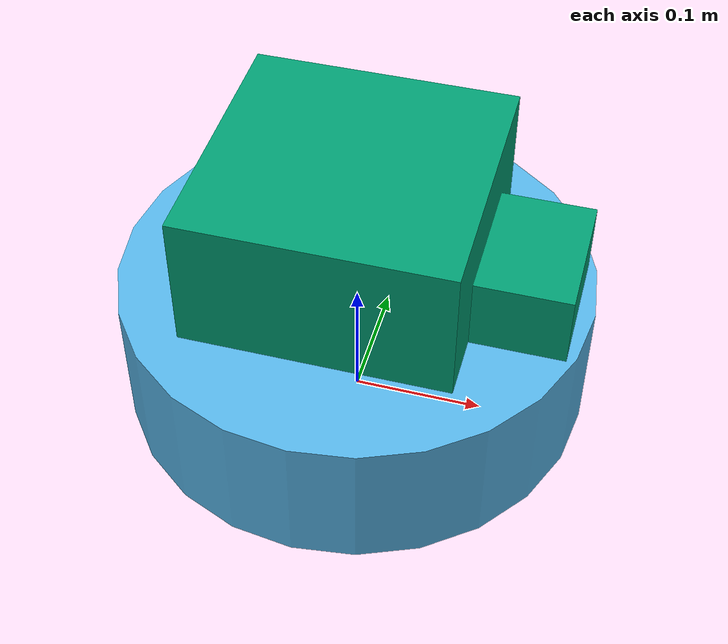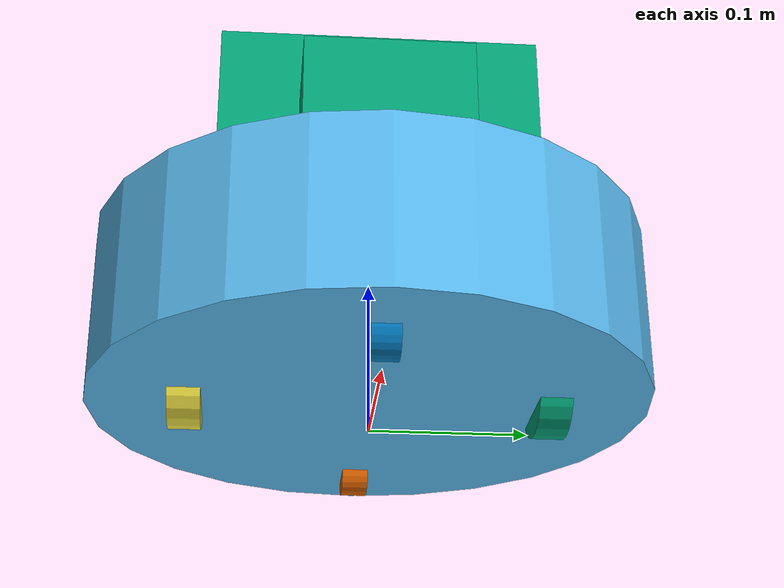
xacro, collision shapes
<?xml version="1.0"?>
<robot name="kobuki_standalone"
       xmlns:sensor="http://playerstage.sourceforge.net/gazebo/xmlschema/#sensor"
       xmlns:controller="http://playerstage.sourceforge.net/gazebo/xmlschema/#controller"
       xmlns:interface="http://playerstage.sourceforge.net/gazebo/xmlschema/#interface"
       xmlns:xacro="http://ros.org/wiki/xacro">

  <!-- Defines the kobuki component tag. -->
  <xacro:include filename="$(find rrt_exploration_tutorials)/launch/includes/urdf/kobuki.urdf.xacro" />
  <xacro:kobuki/>
</robot>

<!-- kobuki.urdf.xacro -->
<robot name="kobuki" xmlns:xacro="http://ros.org/wiki/xacro">
  <xacro:include filename="$(find rrt_exploration_tutorials)/launch/includes/urdf/common_properties.urdf.xacro"/>
  <xacro:include filename="$(find rrt_exploration_tutorials)/launch/includes/urdf/kobuki_gazebo.urdf.xacro"/>

  <!-- Kobuki -->
  <xacro:macro name="kobuki">
    <link name="base_footprint"/>
    <joint name="base_joint" type="fixed">
      <origin xyz="0 0 0.0102" rpy="0 0 0" />
      <parent link="base_footprint"/>
      <child link="base_link" />
    </joint>
    <link name="base_link">
      <visual>
        <geometry>
          <!-- new mesh -->
          <mesh filename="package://rrt_exploration_tutorials/launch/includes/meshes/main_body.dae" />
        </geometry>
        <origin xyz="0.001 0 0.05199" rpy="0 0 0"/>
      </visual>
      <collision>
        <geometry>
          <cylinder length="0.10938" radius="0.178"/>
        </geometry>
        <origin xyz="0.0 0 0.05949" rpy="0 0 0"/>
      </collision>
      <inertial>
        <!-- COM experimentally determined -->
        <origin xyz="0.01 0 0"/>
        <mass value="2.4"/> <!-- 2.4/2.6 kg for small/big battery pack -->
        <inertia ixx="0.019995" ixy="0.0" ixz="0.0"
                 iyy="0.019995" iyz="0.0"
                 izz="0.03675" />
      </inertial>
    </link>

    <joint name="wheel_left_joint" type="continuous">
      <parent link="base_link"/>
      <child link="wheel_left_link"/>
      <origin xyz="0.00 ${0.23/2} 0.0250" rpy="${-M_PI/2} 0 0"/>
      <axis xyz="0 0 1"/>
    </joint>
    <link name="wheel_left_link">
      <visual>
        <geometry>
          <mesh filename="package://rrt_exploration_tutorials/launch/includes/meshes/wheel.dae"/>
        </geometry>
        <origin xyz="0 0 0" rpy="0 0 0"/>
      </visual>
      <collision>
        <geometry>
          <cylinder length="0.0206" radius="0.0352"/>
        </geometry>
        <origin rpy="0 0 0" xyz="0 0 0"/>
      </collision>
      <inertial>
        <mass value="0.01" />
        <origin xyz="0 0 0" />
        <inertia ixx="0.001" ixy="0.0" ixz="0.0"
                 iyy="0.001" iyz="0.0"
                 izz="0.001" />
      </inertial>
    </link>

    <joint name="wheel_right_joint" type="continuous">
      <parent link="base_link"/>
      <child link="wheel_right_link"/>
      <origin xyz="0.00 -${0.23/2} 0.0250" rpy="${-M_PI/2} 0 0"/>
      <axis xyz="0 0 1"/>
    </joint>
    <link name="wheel_right_link">
      <visual>
        <geometry>
          <mesh filename="package://rrt_exploration_tutorials/launch/includes/meshes/wheel.dae"/>
        </geometry>
        <origin xyz="0 0 0" rpy="0 0 0"/>
      </visual>
      <collision>
        <geometry>
          <cylinder length="0.0206" radius="0.0350"/>
        </geometry>
        <origin rpy="0 0 0" xyz="0 0 0"/>
      </collision>
      <inertial>
        <mass value="0.01" />
        <origin xyz="0 0 0" />
        <inertia ixx="0.001" ixy="0.0" ixz="0.0"
                 iyy="0.001" iyz="0.0"
                 izz="0.001" />
      </inertial>
    </link>

    <joint name="caster_front_joint" type="fixed">
      <parent link="base_link"/>
      <child link="caster_front_link"/>
      <origin xyz="0.115 0.0 0.007" rpy="${-M_PI/2} 0 0"/>
    </joint>
    <link name="caster_front_link">
      <collision>
        <geometry>
          <cylinder length="0.0176" radius="0.017"/>
        </geometry>
        <origin rpy="0 0 0" xyz="0 0 0"/>
      </collision>
      <inertial>
        <mass value="0.01" />
        <origin xyz="0 0 0" />
        <inertia ixx="0.001" ixy="0.0" ixz="0.0"
                 iyy="0.001" iyz="0.0"
                 izz="0.001" />
      </inertial>
    </link>

    <joint name="caster_back_joint" type="fixed">
      <parent link="base_link"/>
      <child link="caster_back_link"/>
      <origin xyz="-0.135 0.0 0.009" rpy="${-M_PI/2} 0 0"/>
    </joint>
    <link name="caster_back_link">
      <collision>
        <geometry>
          <cylinder length="0.0176" radius="0.017"/>
        </geometry>
        <origin rpy="0 0 0" xyz="0 0 0"/>
      </collision>
      <inertial>
        <mass value="0.01" />
        <origin xyz="0 0 0" />
        <inertia ixx="0.001" ixy="0.0" ixz="0.0"
                 iyy="0.001" iyz="0.0"
                 izz="0.001" />
      </inertial>
    </link>

    <!-- Kobuki's sensors -->
    <joint name="gyro_joint" type="fixed">
      <axis xyz="0 1 0"/>
      <origin xyz="0.056 0.062 0.0202" rpy="0 0 0"/>
      <parent link="base_link"/>
      <child link="gyro_link"/>
    </joint>
    <link name="gyro_link">
      <inertial>
        <mass value="0.001"/>
        <origin xyz="0 0 0" rpy="0 0 0"/>
        <inertia ixx="0.0001" ixy="0" ixz="0"
                 iyy="0.000001" iyz="0"
                 izz="0.0001"/>
      </inertial>
    </link>

    <joint name="cliff_sensor_left_joint" type="fixed">
      <origin xyz="0.08734 0.13601 0.0214" rpy="0 ${M_PI/2} 0" />
      <parent link="base_link"/>
      <child link="cliff_sensor_left_link" />
    </joint>
    <link name="cliff_sensor_left_link">
      <inertial>
        <mass value="0.0001" />
        <origin xyz="0 0 0" />
        <inertia ixx="0.0001" ixy="0.0" ixz="0.0"
                 iyy="0.0001" iyz="0.0"
                 izz="0.0001" />
      </inertial>
    </link>

    <joint name="cliff_sensor_right_joint" type="fixed">
      <origin xyz="0.085 -0.13601 0.0214" rpy="0 ${M_PI/2} 0" />
      <parent link="base_link"/>
      <child link="cliff_sensor_right_link" />
    </joint>
    <link name="cliff_sensor_right_link">
      <inertial>
        <mass value="0.0001" />
        <origin xyz="0 0 0" />
        <inertia ixx="0.0001" ixy="0.0" ixz="0.0"
                 iyy="0.0001" iyz="0.0"
                 izz="0.0001" />
      </inertial>
    </link>

    <joint name="cliff_sensor_front_joint" type="fixed">
      <origin xyz="0.156 0.00 0.0214" rpy="0 ${M_PI/2} 0" />
      <parent link="base_link"/>
      <child link="cliff_sensor_front_link" />
    </joint>
    <link name="cliff_sensor_front_link">
      <inertial>
        <mass value="0.0001" />
        <origin xyz="0 0 0" />
        <inertia ixx="0.0001" ixy="0.0" ixz="0.0"
                 iyy="0.0001" iyz="0.0"
                 izz="0.0001" />
      </inertial>
    </link>

    <joint name="laser_joint" type="fixed">
    <origin xyz=".115 0 0.12" rpy="0 0 0" />
    <parent link="base_link" />
    <child link="base_laser_link" />
    </joint>

    <link name="base_laser_link">

    <!-- ZHE GE COLLISION XIN JIA DE FOR MULTI-ROBOT NAVIGATION, EXPPLORATION YI QIAN MEI YOU 22.01.15-->
    <collision>
      <origin xyz="-0.12 0 0" rpy="0 0 0"/>
      <geometry>
    <box size="0.2 0.2 0.2"/>
      </geometry>
    </collision>

     <collision>
      <origin xyz="0.0 0 0" rpy="0 0 0"/>
      <geometry>
    <box size="0.1 0.1 0.1"/>
      </geometry>
    </collision>

    <visual>
      <origin xyz="0 0 0" rpy="0 0 0"/>
      <geometry>
        <mesh filename="package://rrt_exploration_tutorials/launch/includes/meshes/hokuyo.dae"/>
      </geometry>
    </visual>

    <inertial>
      <mass value="1e-5" />
      <origin xyz="0 0 1" rpy="0 0 0"/>
      <inertia ixx="1e-6" ixy="0" ixz="0" iyy="1e-6" iyz="0" izz="1e-6" />
    </inertial>
   </link>

    <!-- Kobuki Gazebo simulation details -->
    <xacro:kobuki_sim/>

  </xacro:macro>
</robot>
